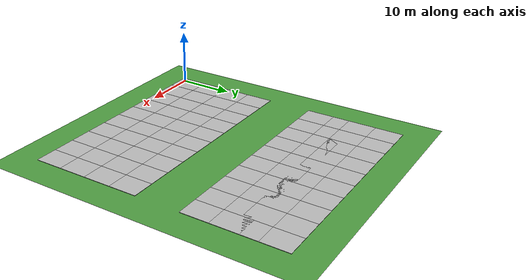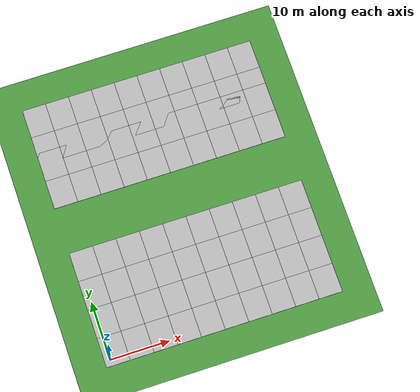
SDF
<sdf version="1.7">
 <world name="default">
  <model name="grass_plane">
   <static>1</static>
   <link name="grass">
    <collision name="collision">
     <geometry><plane><normal>0 0 1</normal><size>500 500</size></plane></geometry>
     <surface><friction><ode><mu>0.5</mu><mu2>0.5</mu2></ode></friction></surface>
    </collision>
    <visual name="visual_0">
     <cast_shadows>0</cast_shadows>
     <geometry><plane><normal>0 0 1</normal><size>500 500</size></plane></geometry>
     <material>
      <script>
       <uri>model://vrc_driving_terrain/materials/scripts</uri>
       <uri>model://vrc_driving_terrain/materials/textures</uri>
       <name>vrc/grass</name>
      </script>
     </material>
    </visual>
   </link>
   <pose>-0.071878 0.09451 -0.01 0 -0 0</pose>
  </model>
  <model name="mud_layer_10">
   <static>1</static>
   <link name="link">
    <collision name="collision"><geometry><box><size>8 10 0.2</size></box></geometry></collision>
    <visual name="visual_1">
     <pose>-2 2.5 0 0 -0 0</pose>
     <cast_shadows>0</cast_shadows>
     <geometry><box><size>4 5 0.2</size></box></geometry>
     <material>
      <script>
       <uri>model://mud_box/materials/scripts</uri>
       <uri>model://mud_box/materials/textures</uri>
       <name>vrc/mud</name>
      </script>
     </material>
    </visual>
    <visual name="visual_2">
     <pose>2 2.5 0 0 -0 0</pose>
     <cast_shadows>0</cast_shadows>
     <geometry><box><size>4 5 0.2</size></box></geometry>
     <material>
      <script>
       <uri>model://mud_box/materials/scripts</uri>
       <uri>model://mud_box/materials/textures</uri>
       <name>vrc/mud</name>
      </script>
     </material>
    </visual>
    <visual name="visual_3">
     <pose>2 -2.5 0 0 -0 0</pose>
     <cast_shadows>0</cast_shadows>
     <geometry><box><size>4 5 0.2</size></box></geometry>
     <material>
      <script>
       <uri>model://mud_box/materials/scripts</uri>
       <uri>model://mud_box/materials/textures</uri>
       <name>vrc/mud</name>
      </script>
     </material>
    </visual>
    <visual name="visual_4">
     <pose>-2 -2.5 0 0 -0 0</pose>
     <cast_shadows>0</cast_shadows>
     <geometry><box><size>4 5 0.2</size></box></geometry>
     <material>
      <script>
       <uri>model://mud_box/materials/scripts</uri>
       <uri>model://mud_box/materials/textures</uri>
       <name>vrc/mud</name>
      </script>
     </material>
    </visual>
   </link>
   <pose>3 4 -0.1 0 -0 0</pose>
  </model>
  <model name="mud_layer_11">
   <static>1</static>
   <link name="link">
    <collision name="collision"><geometry><box><size>8 10 0.2</size></box></geometry></collision>
    <visual name="visual_1">
     <pose>-2 2.5 0 0 -0 0</pose>
     <cast_shadows>0</cast_shadows>
     <geometry><box><size>4 5 0.2</size></box></geometry>
     <material>
      <script>
       <uri>model://mud_box/materials/scripts</uri>
       <uri>model://mud_box/materials/textures</uri>
       <name>vrc/mud</name>
      </script>
     </material>
    </visual>
    <visual name="visual_2">
     <pose>2 2.5 0 0 -0 0</pose>
     <cast_shadows>0</cast_shadows>
     <geometry><box><size>4 5 0.2</size></box></geometry>
     <material>
      <script>
       <uri>model://mud_box/materials/scripts</uri>
       <uri>model://mud_box/materials/textures</uri>
       <name>vrc/mud</name>
      </script>
     </material>
    </visual>
    <visual name="visual_3">
     <pose>2 -2.5 0 0 -0 0</pose>
     <cast_shadows>0</cast_shadows>
     <geometry><box><size>4 5 0.2</size></box></geometry>
     <material>
      <script>
       <uri>model://mud_box/materials/scripts</uri>
       <uri>model://mud_box/materials/textures</uri>
       <name>vrc/mud</name>
      </script>
     </material>
    </visual>
    <visual name="visual_4">
     <pose>-2 -2.5 0 0 -0 0</pose>
     <cast_shadows>0</cast_shadows>
     <geometry><box><size>4 5 0.2</size></box></geometry>
     <material>
      <script>
       <uri>model://mud_box/materials/scripts</uri>
       <uri>model://mud_box/materials/textures</uri>
       <name>vrc/mud</name>
      </script>
     </material>
    </visual>
   </link>
   <pose>11 4 -0.1 0 -0 0</pose>
  </model>
  <model name="mud_layer_12">
   <static>1</static>
   <link name="link">
    <collision name="collision"><geometry><box><size>8 10 0.2</size></box></geometry></collision>
    <visual name="visual_1">
     <pose>-2 2.5 0 0 -0 0</pose>
     <cast_shadows>0</cast_shadows>
     <geometry><box><size>4 5 0.2</size></box></geometry>
     <material>
      <script>
       <uri>model://mud_box/materials/scripts</uri>
       <uri>model://mud_box/materials/textures</uri>
       <name>vrc/mud</name>
      </script>
     </material>
    </visual>
    <visual name="visual_2">
     <pose>2 2.5 0 0 -0 0</pose>
     <cast_shadows>0</cast_shadows>
     <geometry><box><size>4 5 0.2</size></box></geometry>
     <material>
      <script>
       <uri>model://mud_box/materials/scripts</uri>
       <uri>model://mud_box/materials/textures</uri>
       <name>vrc/mud</name>
      </script>
     </material>
    </visual>
    <visual name="visual_3">
     <pose>2 -2.5 0 0 -0 0</pose>
     <cast_shadows>0</cast_shadows>
     <geometry><box><size>4 5 0.2</size></box></geometry>
     <material>
      <script>
       <uri>model://mud_box/materials/scripts</uri>
       <uri>model://mud_box/materials/textures</uri>
       <name>vrc/mud</name>
      </script>
     </material>
    </visual>
    <visual name="visual_4">
     <pose>-2 -2.5 0 0 -0 0</pose>
     <cast_shadows>0</cast_shadows>
     <geometry><box><size>4 5 0.2</size></box></geometry>
     <material>
      <script>
       <uri>model://mud_box/materials/scripts</uri>
       <uri>model://mud_box/materials/textures</uri>
       <name>vrc/mud</name>
      </script>
     </material>
    </visual>
   </link>
   <pose>19 4 -0.1 0 -0 0</pose>
  </model>
  <model name="mud_layer_13">
   <static>1</static>
   <link name="link">
    <collision name="collision"><geometry><box><size>8 10 0.2</size></box></geometry></collision>
    <visual name="visual_1">
     <pose>-2 2.5 0 0 -0 0</pose>
     <cast_shadows>0</cast_shadows>
     <geometry><box><size>4 5 0.2</size></box></geometry>
     <material>
      <script>
       <uri>model://mud_box/materials/scripts</uri>
       <uri>model://mud_box/materials/textures</uri>
       <name>vrc/mud</name>
      </script>
     </material>
    </visual>
    <visual name="visual_2">
     <pose>2 2.5 0 0 -0 0</pose>
     <cast_shadows>0</cast_shadows>
     <geometry><box><size>4 5 0.2</size></box></geometry>
     <material>
      <script>
       <uri>model://mud_box/materials/scripts</uri>
       <uri>model://mud_box/materials/textures</uri>
       <name>vrc/mud</name>
      </script>
     </material>
    </visual>
    <visual name="visual_3">
     <pose>2 -2.5 0 0 -0 0</pose>
     <cast_shadows>0</cast_shadows>
     <geometry><box><size>4 5 0.2</size></box></geometry>
     <material>
      <script>
       <uri>model://mud_box/materials/scripts</uri>
       <uri>model://mud_box/materials/textures</uri>
       <name>vrc/mud</name>
      </script>
     </material>
    </visual>
    <visual name="visual_4">
     <pose>-2 -2.5 0 0 -0 0</pose>
     <cast_shadows>0</cast_shadows>
     <geometry><box><size>4 5 0.2</size></box></geometry>
     <material>
      <script>
       <uri>model://mud_box/materials/scripts</uri>
       <uri>model://mud_box/materials/textures</uri>
       <name>vrc/mud</name>
      </script>
     </material>
    </visual>
   </link>
   <pose>27 4 -0.1 0 -0 0</pose>
  </model>
  <model name="mud_layer_14">
   <static>1</static>
   <link name="link">
    <collision name="collision"><geometry><box><size>8 10 0.2</size></box></geometry></collision>
    <visual name="visual_1">
     <pose>-2 2.5 0 0 -0 0</pose>
     <cast_shadows>0</cast_shadows>
     <geometry><box><size>4 5 0.2</size></box></geometry>
     <material>
      <script>
       <uri>model://mud_box/materials/scripts</uri>
       <uri>model://mud_box/materials/textures</uri>
       <name>vrc/mud</name>
      </script>
     </material>
    </visual>
    <visual name="visual_2">
     <pose>2 2.5 0 0 -0 0</pose>
     <cast_shadows>0</cast_shadows>
     <geometry><box><size>4 5 0.2</size></box></geometry>
     <material>
      <script>
       <uri>model://mud_box/materials/scripts</uri>
       <uri>model://mud_box/materials/textures</uri>
       <name>vrc/mud</name>
      </script>
     </material>
    </visual>
    <visual name="visual_3">
     <pose>2 -2.5 0 0 -0 0</pose>
     <cast_shadows>0</cast_shadows>
     <geometry><box><size>4 5 0.2</size></box></geometry>
     <material>
      <script>
       <uri>model://mud_box/materials/scripts</uri>
       <uri>model://mud_box/materials/textures</uri>
       <name>vrc/mud</name>
      </script>
     </material>
    </visual>
    <visual name="visual_4">
     <pose>-2 -2.5 0 0 -0 0</pose>
     <cast_shadows>0</cast_shadows>
     <geometry><box><size>4 5 0.2</size></box></geometry>
     <material>
      <script>
       <uri>model://mud_box/materials/scripts</uri>
       <uri>model://mud_box/materials/textures</uri>
       <name>vrc/mud</name>
      </script>
     </material>
    </visual>
   </link>
   <pose>35 4 -0.1 0 -0 0</pose>
  </model>
  <model name="mud_layer_20">
   <static>1</static>
   <link name="link">
    <collision name="collision"><geometry><box><size>8 10 0.2</size></box></geometry></collision>
    <visual name="visual_1">
     <pose>-2 2.5 0 0 -0 0</pose>
     <cast_shadows>0</cast_shadows>
     <geometry><box><size>4 5 0.2</size></box></geometry>
     <material>
      <script>
       <uri>model://mud_box/materials/scripts</uri>
       <uri>model://mud_box/materials/textures</uri>
       <name>vrc/mud</name>
      </script>
     </material>
    </visual>
    <visual name="visual_2">
     <pose>2 2.5 0 0 -0 0</pose>
     <cast_shadows>0</cast_shadows>
     <geometry><box><size>4 5 0.2</size></box></geometry>
     <material>
      <script>
       <uri>model://mud_box/materials/scripts</uri>
       <uri>model://mud_box/materials/textures</uri>
       <name>vrc/mud</name>
      </script>
     </material>
    </visual>
    <visual name="visual_3">
     <pose>2 -2.5 0 0 -0 0</pose>
     <cast_shadows>0</cast_shadows>
     <geometry><box><size>4 5 0.2</size></box></geometry>
     <material>
      <script>
       <uri>model://mud_box/materials/scripts</uri>
       <uri>model://mud_box/materials/textures</uri>
       <name>vrc/mud</name>
      </script>
     </material>
    </visual>
    <visual name="visual_4">
     <pose>-2 -2.5 0 0 -0 0</pose>
     <cast_shadows>0</cast_shadows>
     <geometry><box><size>4 5 0.2</size></box></geometry>
     <material>
      <script>
       <uri>model://mud_box/materials/scripts</uri>
       <uri>model://mud_box/materials/textures</uri>
       <name>vrc/mud</name>
      </script>
     </material>
    </visual>
   </link>
   <pose>3 14 -0.1 0 -0 0</pose>
  </model>
  <model name="mud_layer_21">
   <static>1</static>
   <link name="link">
    <collision name="collision"><geometry><box><size>8 10 0.2</size></box></geometry></collision>
    <visual name="visual_1">
     <pose>-2 2.5 0 0 -0 0</pose>
     <cast_shadows>0</cast_shadows>
     <geometry><box><size>4 5 0.2</size></box></geometry>
     <material>
      <script>
       <uri>model://mud_box/materials/scripts</uri>
       <uri>model://mud_box/materials/textures</uri>
       <name>vrc/mud</name>
      </script>
     </material>
    </visual>
    <visual name="visual_2">
     <pose>2 2.5 0 0 -0 0</pose>
     <cast_shadows>0</cast_shadows>
     <geometry><box><size>4 5 0.2</size></box></geometry>
     <material>
      <script>
       <uri>model://mud_box/materials/scripts</uri>
       <uri>model://mud_box/materials/textures</uri>
       <name>vrc/mud</name>
      </script>
     </material>
    </visual>
    <visual name="visual_3">
     <pose>2 -2.5 0 0 -0 0</pose>
     <cast_shadows>0</cast_shadows>
     <geometry><box><size>4 5 0.2</size></box></geometry>
     <material>
      <script>
       <uri>model://mud_box/materials/scripts</uri>
       <uri>model://mud_box/materials/textures</uri>
       <name>vrc/mud</name>
      </script>
     </material>
    </visual>
    <visual name="visual_4">
     <pose>-2 -2.5 0 0 -0 0</pose>
     <cast_shadows>0</cast_shadows>
     <geometry><box><size>4 5 0.2</size></box></geometry>
     <material>
      <script>
       <uri>model://mud_box/materials/scripts</uri>
       <uri>model://mud_box/materials/textures</uri>
       <name>vrc/mud</name>
      </script>
     </material>
    </visual>
   </link>
   <pose>11 14 -0.1 0 -0 0</pose>
  </model>
  <model name="mud_layer_22">
   <static>1</static>
   <link name="link">
    <collision name="collision"><geometry><box><size>8 10 0.2</size></box></geometry></collision>
    <visual name="visual_1">
     <pose>-2 2.5 0 0 -0 0</pose>
     <cast_shadows>0</cast_shadows>
     <geometry><box><size>4 5 0.2</size></box></geometry>
     <material>
      <script>
       <uri>model://mud_box/materials/scripts</uri>
       <uri>model://mud_box/materials/textures</uri>
       <name>vrc/mud</name>
      </script>
     </material>
    </visual>
    <visual name="visual_2">
     <pose>2 2.5 0 0 -0 0</pose>
     <cast_shadows>0</cast_shadows>
     <geometry><box><size>4 5 0.2</size></box></geometry>
     <material>
      <script>
       <uri>model://mud_box/materials/scripts</uri>
       <uri>model://mud_box/materials/textures</uri>
       <name>vrc/mud</name>
      </script>
     </material>
    </visual>
    <visual name="visual_3">
     <pose>2 -2.5 0 0 -0 0</pose>
     <cast_shadows>0</cast_shadows>
     <geometry><box><size>4 5 0.2</size></box></geometry>
     <material>
      <script>
       <uri>model://mud_box/materials/scripts</uri>
       <uri>model://mud_box/materials/textures</uri>
       <name>vrc/mud</name>
      </script>
     </material>
    </visual>
    <visual name="visual_4">
     <pose>-2 -2.5 0 0 -0 0</pose>
     <cast_shadows>0</cast_shadows>
     <geometry><box><size>4 5 0.2</size></box></geometry>
     <material>
      <script>
       <uri>model://mud_box/materials/scripts</uri>
       <uri>model://mud_box/materials/textures</uri>
       <name>vrc/mud</name>
      </script>
     </material>
    </visual>
   </link>
   <pose>19 14 -0.1 0 -0 0</pose>
  </model>
  <model name="mud_layer_23">
   <static>1</static>
   <link name="link">
    <collision name="collision"><geometry><box><size>8 10 0.2</size></box></geometry></collision>
    <visual name="visual_1">
     <pose>-2 2.5 0 0 -0 0</pose>
     <cast_shadows>0</cast_shadows>
     <geometry><box><size>4 5 0.2</size></box></geometry>
     <material>
      <script>
       <uri>model://mud_box/materials/scripts</uri>
       <uri>model://mud_box/materials/textures</uri>
       <name>vrc/mud</name>
      </script>
     </material>
    </visual>
    <visual name="visual_2">
     <pose>2 2.5 0 0 -0 0</pose>
     <cast_shadows>0</cast_shadows>
     <geometry><box><size>4 5 0.2</size></box></geometry>
     <material>
      <script>
       <uri>model://mud_box/materials/scripts</uri>
       <uri>model://mud_box/materials/textures</uri>
       <name>vrc/mud</name>
      </script>
     </material>
    </visual>
    <visual name="visual_3">
     <pose>2 -2.5 0 0 -0 0</pose>
     <cast_shadows>0</cast_shadows>
     <geometry><box><size>4 5 0.2</size></box></geometry>
     <material>
      <script>
       <uri>model://mud_box/materials/scripts</uri>
       <uri>model://mud_box/materials/textures</uri>
       <name>vrc/mud</name>
      </script>
     </material>
    </visual>
    <visual name="visual_4">
     <pose>-2 -2.5 0 0 -0 0</pose>
     <cast_shadows>0</cast_shadows>
     <geometry><box><size>4 5 0.2</size></box></geometry>
     <material>
      <script>
       <uri>model://mud_box/materials/scripts</uri>
       <uri>model://mud_box/materials/textures</uri>
       <name>vrc/mud</name>
      </script>
     </material>
    </visual>
   </link>
   <pose>27 14 -0.1 0 -0 0</pose>
  </model>
  <model name="mud_layer_24">
   <static>1</static>
   <link name="link">
    <collision name="collision"><geometry><box><size>8 10 0.2</size></box></geometry></collision>
    <visual name="visual_1">
     <pose>-2 2.5 0 0 -0 0</pose>
     <cast_shadows>0</cast_shadows>
     <geometry><box><size>4 5 0.2</size></box></geometry>
     <material>
      <script>
       <uri>model://mud_box/materials/scripts</uri>
       <uri>model://mud_box/materials/textures</uri>
       <name>vrc/mud</name>
      </script>
     </material>
    </visual>
    <visual name="visual_2">
     <pose>2 2.5 0 0 -0 0</pose>
     <cast_shadows>0</cast_shadows>
     <geometry><box><size>4 5 0.2</size></box></geometry>
     <material>
      <script>
       <uri>model://mud_box/materials/scripts</uri>
       <uri>model://mud_box/materials/textures</uri>
       <name>vrc/mud</name>
      </script>
     </material>
    </visual>
    <visual name="visual_3">
     <pose>2 -2.5 0 0 -0 0</pose>
     <cast_shadows>0</cast_shadows>
     <geometry><box><size>4 5 0.2</size></box></geometry>
     <material>
      <script>
       <uri>model://mud_box/materials/scripts</uri>
       <uri>model://mud_box/materials/textures</uri>
       <name>vrc/mud</name>
      </script>
     </material>
    </visual>
    <visual name="visual_4">
     <pose>-2 -2.5 0 0 -0 0</pose>
     <cast_shadows>0</cast_shadows>
     <geometry><box><size>4 5 0.2</size></box></geometry>
     <material>
      <script>
       <uri>model://mud_box/materials/scripts</uri>
       <uri>model://mud_box/materials/textures</uri>
       <name>vrc/mud</name>
      </script>
     </material>
    </visual>
   </link>
   <pose>35 14 -0.1 0 -0 0</pose>
  </model>
  <model name="mud_layer_30">
   <static>1</static>
   <link name="link">
    <collision name="collision"><geometry><box><size>8 10 0.2</size></box></geometry></collision>
    <visual name="visual_1">
     <pose>-2 2.5 0 0 -0 0</pose>
     <cast_shadows>0</cast_shadows>
     <geometry><box><size>4 5 0.2</size></box></geometry>
     <material>
      <script>
       <uri>model://mud_box/materials/scripts</uri>
       <uri>model://mud_box/materials/textures</uri>
       <name>vrc/mud</name>
      </script>
     </material>
    </visual>
    <visual name="visual_2">
     <pose>2 2.5 0 0 -0 0</pose>
     <cast_shadows>0</cast_shadows>
     <geometry><box><size>4 5 0.2</size></box></geometry>
     <material>
      <script>
       <uri>model://mud_box/materials/scripts</uri>
       <uri>model://mud_box/materials/textures</uri>
       <name>vrc/mud</name>
      </script>
     </material>
    </visual>
    <visual name="visual_3">
     <pose>2 -2.5 0 0 -0 0</pose>
     <cast_shadows>0</cast_shadows>
     <geometry><box><size>4 5 0.2</size></box></geometry>
     <material>
      <script>
       <uri>model://mud_box/materials/scripts</uri>
       <uri>model://mud_box/materials/textures</uri>
       <name>vrc/mud</name>
      </script>
     </material>
    </visual>
    <visual name="visual_4">
     <pose>-2 -2.5 0 0 -0 0</pose>
     <cast_shadows>0</cast_shadows>
     <geometry><box><size>4 5 0.2</size></box></geometry>
     <material>
      <script>
       <uri>model://mud_box/materials/scripts</uri>
       <uri>model://mud_box/materials/textures</uri>
       <name>vrc/mud</name>
      </script>
     </material>
    </visual>
   </link>
   <pose>3 32 -0.1 0 -0 0</pose>
  </model>
  <model name="mud_layer_31">
   <static>1</static>
   <link name="link">
    <collision name="collision"><geometry><box><size>8 10 0.2</size></box></geometry></collision>
    <visual name="visual_1">
     <pose>-2 2.5 0 0 -0 0</pose>
     <cast_shadows>0</cast_shadows>
     <geometry><box><size>4 5 0.2</size></box></geometry>
     <material>
      <script>
       <uri>model://mud_box/materials/scripts</uri>
       <uri>model://mud_box/materials/textures</uri>
       <name>vrc/mud</name>
      </script>
     </material>
    </visual>
    <visual name="visual_2">
     <pose>2 2.5 0 0 -0 0</pose>
     <cast_shadows>0</cast_shadows>
     <geometry><box><size>4 5 0.2</size></box></geometry>
     <material>
      <script>
       <uri>model://mud_box/materials/scripts</uri>
       <uri>model://mud_box/materials/textures</uri>
       <name>vrc/mud</name>
      </script>
     </material>
    </visual>
    <visual name="visual_3">
     <pose>2 -2.5 0 0 -0 0</pose>
     <cast_shadows>0</cast_shadows>
     <geometry><box><size>4 5 0.2</size></box></geometry>
     <material>
      <script>
       <uri>model://mud_box/materials/scripts</uri>
       <uri>model://mud_box/materials/textures</uri>
       <name>vrc/mud</name>
      </script>
     </material>
    </visual>
    <visual name="visual_4">
     <pose>-2 -2.5 0 0 -0 0</pose>
     <cast_shadows>0</cast_shadows>
     <geometry><box><size>4 5 0.2</size></box></geometry>
     <material>
      <script>
       <uri>model://mud_box/materials/scripts</uri>
       <uri>model://mud_box/materials/textures</uri>
       <name>vrc/mud</name>
      </script>
     </material>
    </visual>
   </link>
   <pose>11 32 -0.1 0 -0 0</pose>
  </model>
  <model name="mud_layer_32">
   <static>1</static>
   <link name="link">
    <collision name="collision"><geometry><box><size>8 10 0.2</size></box></geometry></collision>
    <visual name="visual_1">
     <pose>-2 2.5 0 0 -0 0</pose>
     <cast_shadows>0</cast_shadows>
     <geometry><box><size>4 5 0.2</size></box></geometry>
     <material>
      <script>
       <uri>model://mud_box/materials/scripts</uri>
       <uri>model://mud_box/materials/textures</uri>
       <name>vrc/mud</name>
      </script>
     </material>
    </visual>
    <visual name="visual_2">
     <pose>2 2.5 0 0 -0 0</pose>
     <cast_shadows>0</cast_shadows>
     <geometry><box><size>4 5 0.2</size></box></geometry>
     <material>
      <script>
       <uri>model://mud_box/materials/scripts</uri>
       <uri>model://mud_box/materials/textures</uri>
       <name>vrc/mud</name>
      </script>
     </material>
    </visual>
    <visual name="visual_3">
     <pose>2 -2.5 0 0 -0 0</pose>
     <cast_shadows>0</cast_shadows>
     <geometry><box><size>4 5 0.2</size></box></geometry>
     <material>
      <script>
       <uri>model://mud_box/materials/scripts</uri>
       <uri>model://mud_box/materials/textures</uri>
       <name>vrc/mud</name>
      </script>
     </material>
    </visual>
    <visual name="visual_4">
     <pose>-2 -2.5 0 0 -0 0</pose>
     <cast_shadows>0</cast_shadows>
     <geometry><box><size>4 5 0.2</size></box></geometry>
     <material>
      <script>
       <uri>model://mud_box/materials/scripts</uri>
       <uri>model://mud_box/materials/textures</uri>
       <name>vrc/mud</name>
      </script>
     </material>
    </visual>
   </link>
   <pose>19 32 -0.1 0 -0 0</pose>
  </model>
  <model name="mud_layer_33">
   <static>1</static>
   <link name="link">
    <collision name="collision"><geometry><box><size>8 10 0.2</size></box></geometry></collision>
    <visual name="visual_1">
     <pose>-2 2.5 0 0 -0 0</pose>
     <cast_shadows>0</cast_shadows>
     <geometry><box><size>4 5 0.2</size></box></geometry>
     <material>
      <script>
       <uri>model://mud_box/materials/scripts</uri>
       <uri>model://mud_box/materials/textures</uri>
       <name>vrc/mud</name>
      </script>
     </material>
    </visual>
    <visual name="visual_2">
     <pose>2 2.5 0 0 -0 0</pose>
     <cast_shadows>0</cast_shadows>
     <geometry><box><size>4 5 0.2</size></box></geometry>
     <material>
      <script>
       <uri>model://mud_box/materials/scripts</uri>
       <uri>model://mud_box/materials/textures</uri>
       <name>vrc/mud</name>
      </script>
     </material>
    </visual>
    <visual name="visual_3">
     <pose>2 -2.5 0 0 -0 0</pose>
     <cast_shadows>0</cast_shadows>
     <geometry><box><size>4 5 0.2</size></box></geometry>
     <material>
      <script>
       <uri>model://mud_box/materials/scripts</uri>
       <uri>model://mud_box/materials/textures</uri>
       <name>vrc/mud</name>
      </script>
     </material>
    </visual>
    <visual name="visual_4">
     <pose>-2 -2.5 0 0 -0 0</pose>
     <cast_shadows>0</cast_shadows>
     <geometry><box><size>4 5 0.2</size></box></geometry>
     <material>
      <script>
       <uri>model://mud_box/materials/scripts</uri>
       <uri>model://mud_box/materials/textures</uri>
       <name>vrc/mud</name>
      </script>
     </material>
    </visual>
   </link>
   <pose>27 32 -0.1 0 -0 0</pose>
  </model>
  <model name="mud_layer_34">
   <static>1</static>
   <link name="link">
    <collision name="collision"><geometry><box><size>8 10 0.2</size></box></geometry></collision>
    <visual name="visual_1">
     <pose>-2 2.5 0 0 -0 0</pose>
     <cast_shadows>0</cast_shadows>
     <geometry><box><size>4 5 0.2</size></box></geometry>
     <material>
      <script>
       <uri>model://mud_box/materials/scripts</uri>
       <uri>model://mud_box/materials/textures</uri>
       <name>vrc/mud</name>
      </script>
     </material>
    </visual>
    <visual name="visual_2">
     <pose>2 2.5 0 0 -0 0</pose>
     <cast_shadows>0</cast_shadows>
     <geometry><box><size>4 5 0.2</size></box></geometry>
     <material>
      <script>
       <uri>model://mud_box/materials/scripts</uri>
       <uri>model://mud_box/materials/textures</uri>
       <name>vrc/mud</name>
      </script>
     </material>
    </visual>
    <visual name="visual_3">
     <pose>2 -2.5 0 0 -0 0</pose>
     <cast_shadows>0</cast_shadows>
     <geometry><box><size>4 5 0.2</size></box></geometry>
     <material>
      <script>
       <uri>model://mud_box/materials/scripts</uri>
       <uri>model://mud_box/materials/textures</uri>
       <name>vrc/mud</name>
      </script>
     </material>
    </visual>
    <visual name="visual_4">
     <pose>-2 -2.5 0 0 -0 0</pose>
     <cast_shadows>0</cast_shadows>
     <geometry><box><size>4 5 0.2</size></box></geometry>
     <material>
      <script>
       <uri>model://mud_box/materials/scripts</uri>
       <uri>model://mud_box/materials/textures</uri>
       <name>vrc/mud</name>
      </script>
     </material>
    </visual>
   </link>
   <pose>35 32 -0.1 0 -0 0</pose>
  </model>
  <model name="mud_layer_40">
   <static>1</static>
   <link name="link">
    <collision name="collision"><geometry><box><size>8 10 0.2</size></box></geometry></collision>
    <visual name="visual_1">
     <pose>-2 2.5 0 0 -0 0</pose>
     <cast_shadows>0</cast_shadows>
     <geometry><box><size>4 5 0.2</size></box></geometry>
     <material>
      <script>
       <uri>model://mud_box/materials/scripts</uri>
       <uri>model://mud_box/materials/textures</uri>
       <name>vrc/mud</name>
      </script>
     </material>
    </visual>
    <visual name="visual_2">
     <pose>2 2.5 0 0 -0 0</pose>
     <cast_shadows>0</cast_shadows>
     <geometry><box><size>4 5 0.2</size></box></geometry>
     <material>
      <script>
       <uri>model://mud_box/materials/scripts</uri>
       <uri>model://mud_box/materials/textures</uri>
       <name>vrc/mud</name>
      </script>
     </material>
    </visual>
    <visual name="visual_3">
     <pose>2 -2.5 0 0 -0 0</pose>
     <cast_shadows>0</cast_shadows>
     <geometry><box><size>4 5 0.2</size></box></geometry>
     <material>
      <script>
       <uri>model://mud_box/materials/scripts</uri>
       <uri>model://mud_box/materials/textures</uri>
       <name>vrc/mud</name>
      </script>
     </material>
    </visual>
    <visual name="visual_4">
     <pose>-2 -2.5 0 0 -0 0</pose>
     <cast_shadows>0</cast_shadows>
     <geometry><box><size>4 5 0.2</size></box></geometry>
     <material>
      <script>
       <uri>model://mud_box/materials/scripts</uri>
       <uri>model://mud_box/materials/textures</uri>
       <name>vrc/mud</name>
      </script>
     </material>
    </visual>
   </link>
   <pose>3 40 -0.1 0 -0 0</pose>
  </model>
  <model name="mud_layer_41">
   <static>1</static>
   <link name="link">
    <collision name="collision"><geometry><box><size>8 10 0.2</size></box></geometry></collision>
    <visual name="visual_1">
     <pose>-2 2.5 0 0 -0 0</pose>
     <cast_shadows>0</cast_shadows>
     <geometry><box><size>4 5 0.2</size></box></geometry>
     <material>
      <script>
       <uri>model://mud_box/materials/scripts</uri>
       <uri>model://mud_box/materials/textures</uri>
       <name>vrc/mud</name>
      </script>
     </material>
    </visual>
    <visual name="visual_2">
     <pose>2 2.5 0 0 -0 0</pose>
     <cast_shadows>0</cast_shadows>
     <geometry><box><size>4 5 0.2</size></box></geometry>
     <material>
      <script>
       <uri>model://mud_box/materials/scripts</uri>
       <uri>model://mud_box/materials/textures</uri>
       <name>vrc/mud</name>
      </script>
     </material>
    </visual>
    <visual name="visual_3">
     <pose>2 -2.5 0 0 -0 0</pose>
     <cast_shadows>0</cast_shadows>
     <geometry><box><size>4 5 0.2</size></box></geometry>
     <material>
      <script>
       <uri>model://mud_box/materials/scripts</uri>
       <uri>model://mud_box/materials/textures</uri>
       <name>vrc/mud</name>
      </script>
     </material>
    </visual>
    <visual name="visual_4">
     <pose>-2 -2.5 0 0 -0 0</pose>
     <cast_shadows>0</cast_shadows>
     <geometry><box><size>4 5 0.2</size></box></geometry>
     <material>
      <script>
       <uri>model://mud_box/materials/scripts</uri>
       <uri>model://mud_box/materials/textures</uri>
       <name>vrc/mud</name>
      </script>
     </material>
    </visual>
   </link>
   <pose>11 40 -0.1 0 -0 0</pose>
  </model>
  <model name="mud_layer_42">
   <static>1</static>
   <link name="link">
    <collision name="collision"><geometry><box><size>8 10 0.2</size></box></geometry></collision>
    <visual name="visual_1">
     <pose>-2 2.5 0 0 -0 0</pose>
     <cast_shadows>0</cast_shadows>
     <geometry><box><size>4 5 0.2</size></box></geometry>
     <material>
      <script>
       <uri>model://mud_box/materials/scripts</uri>
       <uri>model://mud_box/materials/textures</uri>
       <name>vrc/mud</name>
      </script>
     </material>
    </visual>
    <visual name="visual_2">
     <pose>2 2.5 0 0 -0 0</pose>
     <cast_shadows>0</cast_shadows>
     <geometry><box><size>4 5 0.2</size></box></geometry>
     <material>
      <script>
       <uri>model://mud_box/materials/scripts</uri>
       <uri>model://mud_box/materials/textures</uri>
       <name>vrc/mud</name>
      </script>
     </material>
    </visual>
    <visual name="visual_3">
     <pose>2 -2.5 0 0 -0 0</pose>
     <cast_shadows>0</cast_shadows>
     <geometry><box><size>4 5 0.2</size></box></geometry>
     <material>
      <script>
       <uri>model://mud_box/materials/scripts</uri>
       <uri>model://mud_box/materials/textures</uri>
       <name>vrc/mud</name>
      </script>
     </material>
    </visual>
    <visual name="visual_4">
     <pose>-2 -2.5 0 0 -0 0</pose>
     <cast_shadows>0</cast_shadows>
     <geometry><box><size>4 5 0.2</size></box></geometry>
     <material>
      <script>
       <uri>model://mud_box/materials/scripts</uri>
       <uri>model://mud_box/materials/textures</uri>
       <name>vrc/mud</name>
      </script>
     </material>
    </visual>
   </link>
   <pose>19 40 -0.1 0 -0 0</pose>
  </model>
  <model name="mud_layer_43">
   <static>1</static>
   <link name="link">
    <collision name="collision"><geometry><box><size>8 10 0.2</size></box></geometry></collision>
    <visual name="visual_1">
     <pose>-2 2.5 0 0 -0 0</pose>
     <cast_shadows>0</cast_shadows>
     <geometry><box><size>4 5 0.2</size></box></geometry>
     <material>
      <script>
       <uri>model://mud_box/materials/scripts</uri>
       <uri>model://mud_box/materials/textures</uri>
       <name>vrc/mud</name>
      </script>
     </material>
    </visual>
    <visual name="visual_2">
     <pose>2 2.5 0 0 -0 0</pose>
     <cast_shadows>0</cast_shadows>
     <geometry><box><size>4 5 0.2</size></box></geometry>
     <material>
      <script>
       <uri>model://mud_box/materials/scripts</uri>
       <uri>model://mud_box/materials/textures</uri>
       <name>vrc/mud</name>
      </script>
     </material>
    </visual>
    <visual name="visual_3">
     <pose>2 -2.5 0 0 -0 0</pose>
     <cast_shadows>0</cast_shadows>
     <geometry><box><size>4 5 0.2</size></box></geometry>
     <material>
      <script>
       <uri>model://mud_box/materials/scripts</uri>
       <uri>model://mud_box/materials/textures</uri>
       <name>vrc/mud</name>
      </script>
     </material>
    </visual>
    <visual name="visual_4">
     <pose>-2 -2.5 0 0 -0 0</pose>
     <cast_shadows>0</cast_shadows>
     <geometry><box><size>4 5 0.2</size></box></geometry>
     <material>
      <script>
       <uri>model://mud_box/materials/scripts</uri>
       <uri>model://mud_box/materials/textures</uri>
       <name>vrc/mud</name>
      </script>
     </material>
    </visual>
   </link>
   <pose>27 40 -0.1 0 -0 0</pose>
  </model>
  <model name="mud_layer_44">
   <static>1</static>
   <link name="link">
    <collision name="collision"><geometry><box><size>8 10 0.2</size></box></geometry></collision>
    <visual name="visual_1">
     <pose>-2 2.5 0 0 -0 0</pose>
     <cast_shadows>0</cast_shadows>
     <geometry><box><size>4 5 0.2</size></box></geometry>
     <material>
      <script>
       <uri>model://mud_box/materials/scripts</uri>
       <uri>model://mud_box/materials/textures</uri>
       <name>vrc/mud</name>
      </script>
     </material>
    </visual>
    <visual name="visual_2">
     <pose>2 2.5 0 0 -0 0</pose>
     <cast_shadows>0</cast_shadows>
     <geometry><box><size>4 5 0.2</size></box></geometry>
     <material>
      <script>
       <uri>model://mud_box/materials/scripts</uri>
       <uri>model://mud_box/materials/textures</uri>
       <name>vrc/mud</name>
      </script>
     </material>
    </visual>
    <visual name="visual_3">
     <pose>2 -2.5 0 0 -0 0</pose>
     <cast_shadows>0</cast_shadows>
     <geometry><box><size>4 5 0.2</size></box></geometry>
     <material>
      <script>
       <uri>model://mud_box/materials/scripts</uri>
       <uri>model://mud_box/materials/textures</uri>
       <name>vrc/mud</name>
      </script>
     </material>
    </visual>
    <visual name="visual_4">
     <pose>-2 -2.5 0 0 -0 0</pose>
     <cast_shadows>0</cast_shadows>
     <geometry><box><size>4 5 0.2</size></box></geometry>
     <material>
      <script>
       <uri>model://mud_box/materials/scripts</uri>
       <uri>model://mud_box/materials/textures</uri>
       <name>vrc/mud</name>
      </script>
     </material>
    </visual>
   </link>
   <pose>35 40 -0.1 0 -0 0</pose>
  </model>
 </world>
</sdf>
